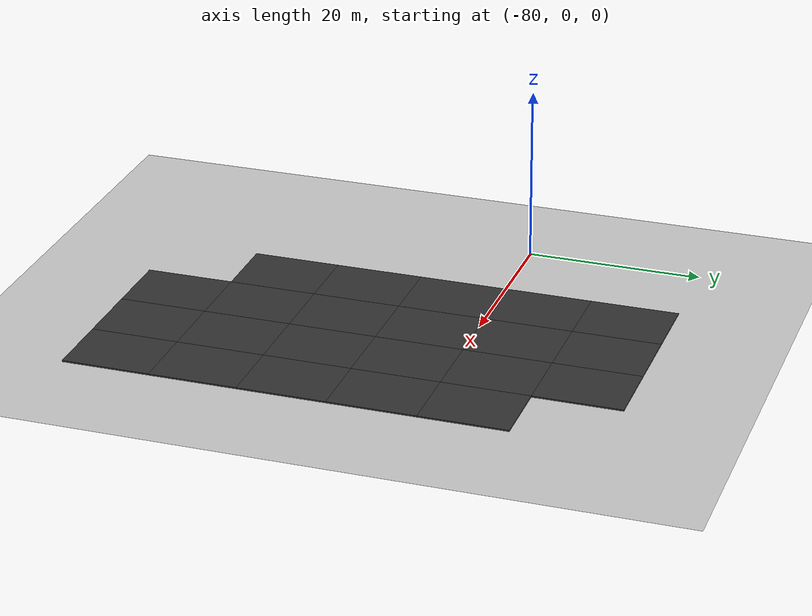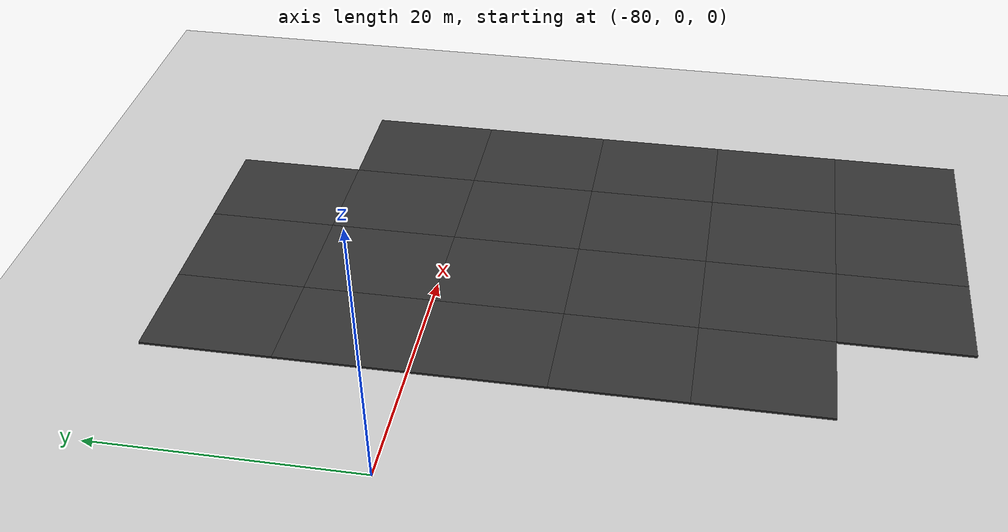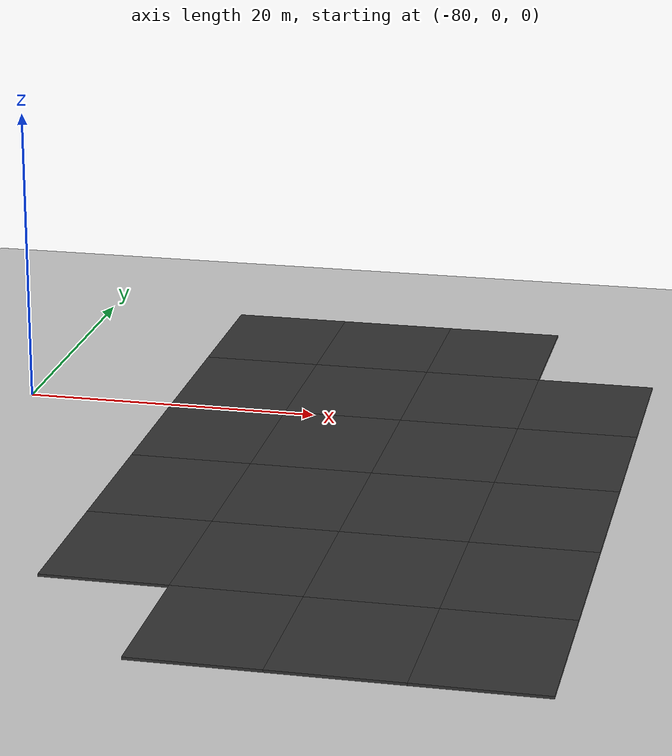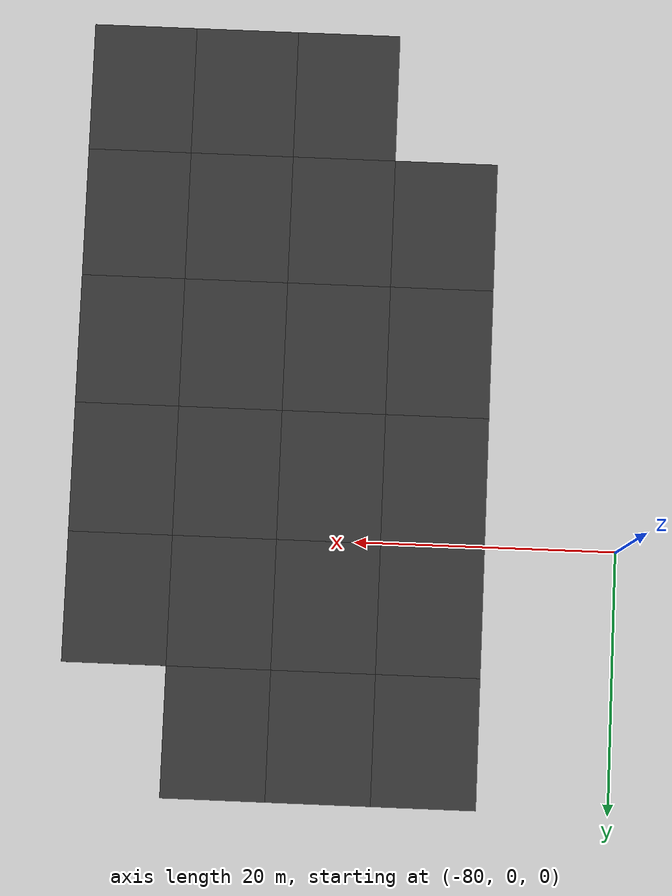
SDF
<sdf version="1.7">
 <world name="default">
  <model name="ground_plane">
   <static>1</static>
   <link name="link">
    <collision name="collision">
     <geometry><plane><normal>0 0 1</normal><size>100 100</size></plane></geometry>
     <surface>
      <contact><collide_bitmask>65535</collide_bitmask></contact>
      <friction><ode><mu>100</mu><mu2>50</mu2></ode></friction>
     </surface>
    </collision>
    <visual name="visual">
     <cast_shadows>0</cast_shadows>
     <geometry><plane><normal>0 0 1</normal><size>100 100</size></plane></geometry>
     <material>
      <script><uri>file://media/materials/scripts/gazebo.material</uri><name>Gazebo/Grey</name></script>
     </material>
    </visual>
   </link>
  </model>
  <model name="mud_box_54">
   <link name="link">
    <inertial>
     <mass>1</mass>
     <inertia><ixx>1</ixx><ixy>0</ixy><ixz>0</ixz><iyy>1</iyy><iyz>0</iyz><izz>1</izz></inertia>
    </inertial>
    <visual name="visual">
     <cast_shadows>0</cast_shadows>
     <geometry><box><size>8 10 0.2</size></box></geometry>
     <material>
      <script>
       <uri>model://mud_box/materials/scripts</uri>
       <uri>model://mud_box/materials/textures</uri>
       <name>vrc/mud</name>
      </script>
      <shader type="pixel"><normal_map>__default__</normal_map></shader>
      <ambient>0.2 0.2 0.2 1</ambient>
      <diffuse>0.2 0.2 0.2 1</diffuse>
      <specular>0.2 0.2 0.2 1</specular>
      <emissive>0 0 0 1</emissive>
     </material>
    </visual>
    <collision name="collision">
     <geometry><box><size>8 10 0.2</size></box></geometry>
     <surface>
      <friction>
       <ode><mu>1</mu><mu2>1</mu2><fdir1>0 0 0</fdir1><slip1>0</slip1><slip2>0</slip2></ode>
       <torsional>
        <coefficient>1</coefficient>
        <patch_radius>0</patch_radius>
        <surface_radius>0</surface_radius>
        <use_patch_radius>1</use_patch_radius>
        <ode><slip>0</slip></ode>
       </torsional>
      </friction>
      <bounce><restitution_coefficient>0</restitution_coefficient><threshold>1e+06</threshold></bounce>
      <contact>
       <collide_without_contact>0</collide_without_contact>
       <collide_without_contact_bitmask>1</collide_without_contact_bitmask>
       <collide_bitmask>1</collide_bitmask>
       <ode>
        <soft_cfm>0</soft_cfm>
        <soft_erp>0.2</soft_erp>
        <kp>1e+13</kp>
        <kd>1</kd>
        <max_vel>0.01</max_vel>
        <min_depth>0</min_depth>
       </ode>
       <bullet>
        <split_impulse>1</split_impulse>
        <split_impulse_penetration_threshold>-0.01</split_impulse_penetration_threshold>
        <soft_cfm>0</soft_cfm>
        <soft_erp>0.2</soft_erp>
        <kp>1e+13</kp>
        <kd>1</kd>
       </bullet>
      </contact>
     </surface>
    </collision>
   </link>
   <static>1</static>
   <pose>-42 -5 0 0 -0 0</pose>
  </model>
  <model name="mud_box_55">
   <link name="link">
    <inertial>
     <mass>1</mass>
     <inertia><ixx>1</ixx><ixy>0</ixy><ixz>0</ixz><iyy>1</iyy><iyz>0</iyz><izz>1</izz></inertia>
    </inertial>
    <visual name="visual">
     <cast_shadows>0</cast_shadows>
     <geometry><box><size>8 10 0.2</size></box></geometry>
     <material>
      <script>
       <uri>model://mud_box/materials/scripts</uri>
       <uri>model://mud_box/materials/textures</uri>
       <name>vrc/mud</name>
      </script>
      <shader type="pixel"><normal_map>__default__</normal_map></shader>
      <ambient>0.2 0.2 0.2 1</ambient>
      <diffuse>0.2 0.2 0.2 1</diffuse>
      <specular>0.2 0.2 0.2 1</specular>
      <emissive>0 0 0 1</emissive>
     </material>
    </visual>
    <collision name="collision">
     <geometry><box><size>8 10 0.2</size></box></geometry>
     <surface>
      <friction>
       <ode><mu>1</mu><mu2>1</mu2><fdir1>0 0 0</fdir1><slip1>0</slip1><slip2>0</slip2></ode>
       <torsional>
        <coefficient>1</coefficient>
        <patch_radius>0</patch_radius>
        <surface_radius>0</surface_radius>
        <use_patch_radius>1</use_patch_radius>
        <ode><slip>0</slip></ode>
       </torsional>
      </friction>
      <bounce><restitution_coefficient>0</restitution_coefficient><threshold>1e+06</threshold></bounce>
      <contact>
       <collide_without_contact>0</collide_without_contact>
       <collide_without_contact_bitmask>1</collide_without_contact_bitmask>
       <collide_bitmask>1</collide_bitmask>
       <ode>
        <soft_cfm>0</soft_cfm>
        <soft_erp>0.2</soft_erp>
        <kp>1e+13</kp>
        <kd>1</kd>
        <max_vel>0.01</max_vel>
        <min_depth>0</min_depth>
       </ode>
       <bullet>
        <split_impulse>1</split_impulse>
        <split_impulse_penetration_threshold>-0.01</split_impulse_penetration_threshold>
        <soft_cfm>0</soft_cfm>
        <soft_erp>0.2</soft_erp>
        <kp>1e+13</kp>
        <kd>1</kd>
       </bullet>
      </contact>
     </surface>
    </collision>
   </link>
   <static>1</static>
   <pose>-42 -15 0 0 -0 0</pose>
  </model>
  <model name="mud_box_56">
   <link name="link">
    <inertial>
     <mass>1</mass>
     <inertia><ixx>1</ixx><ixy>0</ixy><ixz>0</ixz><iyy>1</iyy><iyz>0</iyz><izz>1</izz></inertia>
    </inertial>
    <visual name="visual">
     <cast_shadows>0</cast_shadows>
     <geometry><box><size>8 10 0.2</size></box></geometry>
     <material>
      <script>
       <uri>model://mud_box/materials/scripts</uri>
       <uri>model://mud_box/materials/textures</uri>
       <name>vrc/mud</name>
      </script>
      <shader type="pixel"><normal_map>__default__</normal_map></shader>
      <ambient>0.2 0.2 0.2 1</ambient>
      <diffuse>0.2 0.2 0.2 1</diffuse>
      <specular>0.2 0.2 0.2 1</specular>
      <emissive>0 0 0 1</emissive>
     </material>
    </visual>
    <collision name="collision">
     <geometry><box><size>8 10 0.2</size></box></geometry>
     <surface>
      <friction>
       <ode><mu>1</mu><mu2>1</mu2><fdir1>0 0 0</fdir1><slip1>0</slip1><slip2>0</slip2></ode>
       <torsional>
        <coefficient>1</coefficient>
        <patch_radius>0</patch_radius>
        <surface_radius>0</surface_radius>
        <use_patch_radius>1</use_patch_radius>
        <ode><slip>0</slip></ode>
       </torsional>
      </friction>
      <bounce><restitution_coefficient>0</restitution_coefficient><threshold>1e+06</threshold></bounce>
      <contact>
       <collide_without_contact>0</collide_without_contact>
       <collide_without_contact_bitmask>1</collide_without_contact_bitmask>
       <collide_bitmask>1</collide_bitmask>
       <ode>
        <soft_cfm>0</soft_cfm>
        <soft_erp>0.2</soft_erp>
        <kp>1e+13</kp>
        <kd>1</kd>
        <max_vel>0.01</max_vel>
        <min_depth>0</min_depth>
       </ode>
       <bullet>
        <split_impulse>1</split_impulse>
        <split_impulse_penetration_threshold>-0.01</split_impulse_penetration_threshold>
        <soft_cfm>0</soft_cfm>
        <soft_erp>0.2</soft_erp>
        <kp>1e+13</kp>
        <kd>1</kd>
       </bullet>
      </contact>
     </surface>
    </collision>
   </link>
   <static>1</static>
   <pose>-42 -25 0 0 -0 0</pose>
  </model>
  <model name="mud_box_57">
   <link name="link">
    <inertial>
     <mass>1</mass>
     <inertia><ixx>1</ixx><ixy>0</ixy><ixz>0</ixz><iyy>1</iyy><iyz>0</iyz><izz>1</izz></inertia>
    </inertial>
    <visual name="visual">
     <cast_shadows>0</cast_shadows>
     <geometry><box><size>8 10 0.2</size></box></geometry>
     <material>
      <script>
       <uri>model://mud_box/materials/scripts</uri>
       <uri>model://mud_box/materials/textures</uri>
       <name>vrc/mud</name>
      </script>
      <shader type="pixel"><normal_map>__default__</normal_map></shader>
      <ambient>0.2 0.2 0.2 1</ambient>
      <diffuse>0.2 0.2 0.2 1</diffuse>
      <specular>0.2 0.2 0.2 1</specular>
      <emissive>0 0 0 1</emissive>
     </material>
    </visual>
    <collision name="collision">
     <geometry><box><size>8 10 0.2</size></box></geometry>
     <surface>
      <friction>
       <ode><mu>1</mu><mu2>1</mu2><fdir1>0 0 0</fdir1><slip1>0</slip1><slip2>0</slip2></ode>
       <torsional>
        <coefficient>1</coefficient>
        <patch_radius>0</patch_radius>
        <surface_radius>0</surface_radius>
        <use_patch_radius>1</use_patch_radius>
        <ode><slip>0</slip></ode>
       </torsional>
      </friction>
      <bounce><restitution_coefficient>0</restitution_coefficient><threshold>1e+06</threshold></bounce>
      <contact>
       <collide_without_contact>0</collide_without_contact>
       <collide_without_contact_bitmask>1</collide_without_contact_bitmask>
       <collide_bitmask>1</collide_bitmask>
       <ode>
        <soft_cfm>0</soft_cfm>
        <soft_erp>0.2</soft_erp>
        <kp>1e+13</kp>
        <kd>1</kd>
        <max_vel>0.01</max_vel>
        <min_depth>0</min_depth>
       </ode>
       <bullet>
        <split_impulse>1</split_impulse>
        <split_impulse_penetration_threshold>-0.01</split_impulse_penetration_threshold>
        <soft_cfm>0</soft_cfm>
        <soft_erp>0.2</soft_erp>
        <kp>1e+13</kp>
        <kd>1</kd>
       </bullet>
      </contact>
     </surface>
    </collision>
   </link>
   <static>1</static>
   <pose>-42 -35 0 0 -0 0</pose>
  </model>
  <model name="mud_box_60">
   <link name="link">
    <inertial>
     <mass>1</mass>
     <inertia><ixx>1</ixx><ixy>0</ixy><ixz>0</ixz><iyy>1</iyy><iyz>0</iyz><izz>1</izz></inertia>
    </inertial>
    <visual name="visual">
     <cast_shadows>0</cast_shadows>
     <geometry><box><size>8 10 0.2</size></box></geometry>
     <material>
      <script>
       <uri>model://mud_box/materials/scripts</uri>
       <uri>model://mud_box/materials/textures</uri>
       <name>vrc/mud</name>
      </script>
      <shader type="pixel"><normal_map>__default__</normal_map></shader>
      <ambient>0.2 0.2 0.2 1</ambient>
      <diffuse>0.2 0.2 0.2 1</diffuse>
      <specular>0.2 0.2 0.2 1</specular>
      <emissive>0 0 0 1</emissive>
     </material>
    </visual>
    <collision name="collision">
     <geometry><box><size>8 10 0.2</size></box></geometry>
     <surface>
      <friction>
       <ode><mu>1</mu><mu2>1</mu2><fdir1>0 0 0</fdir1><slip1>0</slip1><slip2>0</slip2></ode>
       <torsional>
        <coefficient>1</coefficient>
        <patch_radius>0</patch_radius>
        <surface_radius>0</surface_radius>
        <use_patch_radius>1</use_patch_radius>
        <ode><slip>0</slip></ode>
       </torsional>
      </friction>
      <bounce><restitution_coefficient>0</restitution_coefficient><threshold>1e+06</threshold></bounce>
      <contact>
       <collide_without_contact>0</collide_without_contact>
       <collide_without_contact_bitmask>1</collide_without_contact_bitmask>
       <collide_bitmask>1</collide_bitmask>
       <ode>
        <soft_cfm>0</soft_cfm>
        <soft_erp>0.2</soft_erp>
        <kp>1e+13</kp>
        <kd>1</kd>
        <max_vel>0.01</max_vel>
        <min_depth>0</min_depth>
       </ode>
       <bullet>
        <split_impulse>1</split_impulse>
        <split_impulse_penetration_threshold>-0.01</split_impulse_penetration_threshold>
        <soft_cfm>0</soft_cfm>
        <soft_erp>0.2</soft_erp>
        <kp>1e+13</kp>
        <kd>1</kd>
       </bullet>
      </contact>
     </surface>
    </collision>
   </link>
   <static>1</static>
   <pose>-50 -35 0 0 -0 0</pose>
  </model>
  <model name="mud_box_61">
   <link name="link">
    <inertial>
     <mass>1</mass>
     <inertia><ixx>1</ixx><ixy>0</ixy><ixz>0</ixz><iyy>1</iyy><iyz>0</iyz><izz>1</izz></inertia>
    </inertial>
    <visual name="visual">
     <cast_shadows>0</cast_shadows>
     <geometry><box><size>8 10 0.2</size></box></geometry>
     <material>
      <script>
       <uri>model://mud_box/materials/scripts</uri>
       <uri>model://mud_box/materials/textures</uri>
       <name>vrc/mud</name>
      </script>
      <shader type="pixel"><normal_map>__default__</normal_map></shader>
      <ambient>0.2 0.2 0.2 1</ambient>
      <diffuse>0.2 0.2 0.2 1</diffuse>
      <specular>0.2 0.2 0.2 1</specular>
      <emissive>0 0 0 1</emissive>
     </material>
    </visual>
    <collision name="collision">
     <geometry><box><size>8 10 0.2</size></box></geometry>
     <surface>
      <friction>
       <ode><mu>1</mu><mu2>1</mu2><fdir1>0 0 0</fdir1><slip1>0</slip1><slip2>0</slip2></ode>
       <torsional>
        <coefficient>1</coefficient>
        <patch_radius>0</patch_radius>
        <surface_radius>0</surface_radius>
        <use_patch_radius>1</use_patch_radius>
        <ode><slip>0</slip></ode>
       </torsional>
      </friction>
      <bounce><restitution_coefficient>0</restitution_coefficient><threshold>1e+06</threshold></bounce>
      <contact>
       <collide_without_contact>0</collide_without_contact>
       <collide_without_contact_bitmask>1</collide_without_contact_bitmask>
       <collide_bitmask>1</collide_bitmask>
       <ode>
        <soft_cfm>0</soft_cfm>
        <soft_erp>0.2</soft_erp>
        <kp>1e+13</kp>
        <kd>1</kd>
        <max_vel>0.01</max_vel>
        <min_depth>0</min_depth>
       </ode>
       <bullet>
        <split_impulse>1</split_impulse>
        <split_impulse_penetration_threshold>-0.01</split_impulse_penetration_threshold>
        <soft_cfm>0</soft_cfm>
        <soft_erp>0.2</soft_erp>
        <kp>1e+13</kp>
        <kd>1</kd>
       </bullet>
      </contact>
     </surface>
    </collision>
   </link>
   <static>1</static>
   <pose>-50 -25 0 0 -0 0</pose>
  </model>
  <model name="mud_box_62">
   <link name="link">
    <inertial>
     <mass>1</mass>
     <inertia><ixx>1</ixx><ixy>0</ixy><ixz>0</ixz><iyy>1</iyy><iyz>0</iyz><izz>1</izz></inertia>
    </inertial>
    <visual name="visual">
     <cast_shadows>0</cast_shadows>
     <geometry><box><size>8 10 0.2</size></box></geometry>
     <material>
      <script>
       <uri>model://mud_box/materials/scripts</uri>
       <uri>model://mud_box/materials/textures</uri>
       <name>vrc/mud</name>
      </script>
      <shader type="pixel"><normal_map>__default__</normal_map></shader>
      <ambient>0.2 0.2 0.2 1</ambient>
      <diffuse>0.2 0.2 0.2 1</diffuse>
      <specular>0.2 0.2 0.2 1</specular>
      <emissive>0 0 0 1</emissive>
     </material>
    </visual>
    <collision name="collision">
     <geometry><box><size>8 10 0.2</size></box></geometry>
     <surface>
      <friction>
       <ode><mu>1</mu><mu2>1</mu2><fdir1>0 0 0</fdir1><slip1>0</slip1><slip2>0</slip2></ode>
       <torsional>
        <coefficient>1</coefficient>
        <patch_radius>0</patch_radius>
        <surface_radius>0</surface_radius>
        <use_patch_radius>1</use_patch_radius>
        <ode><slip>0</slip></ode>
       </torsional>
      </friction>
      <bounce><restitution_coefficient>0</restitution_coefficient><threshold>1e+06</threshold></bounce>
      <contact>
       <collide_without_contact>0</collide_without_contact>
       <collide_without_contact_bitmask>1</collide_without_contact_bitmask>
       <collide_bitmask>1</collide_bitmask>
       <ode>
        <soft_cfm>0</soft_cfm>
        <soft_erp>0.2</soft_erp>
        <kp>1e+13</kp>
        <kd>1</kd>
        <max_vel>0.01</max_vel>
        <min_depth>0</min_depth>
       </ode>
       <bullet>
        <split_impulse>1</split_impulse>
        <split_impulse_penetration_threshold>-0.01</split_impulse_penetration_threshold>
        <soft_cfm>0</soft_cfm>
        <soft_erp>0.2</soft_erp>
        <kp>1e+13</kp>
        <kd>1</kd>
       </bullet>
      </contact>
     </surface>
    </collision>
   </link>
   <static>1</static>
   <pose>-50 -15 0 0 -0 0</pose>
  </model>
  <model name="mud_box_63">
   <link name="link">
    <inertial>
     <mass>1</mass>
     <inertia><ixx>1</ixx><ixy>0</ixy><ixz>0</ixz><iyy>1</iyy><iyz>0</iyz><izz>1</izz></inertia>
    </inertial>
    <visual name="visual">
     <cast_shadows>0</cast_shadows>
     <geometry><box><size>8 10 0.2</size></box></geometry>
     <material>
      <script>
       <uri>model://mud_box/materials/scripts</uri>
       <uri>model://mud_box/materials/textures</uri>
       <name>vrc/mud</name>
      </script>
      <shader type="pixel"><normal_map>__default__</normal_map></shader>
      <ambient>0.2 0.2 0.2 1</ambient>
      <diffuse>0.2 0.2 0.2 1</diffuse>
      <specular>0.2 0.2 0.2 1</specular>
      <emissive>0 0 0 1</emissive>
     </material>
    </visual>
    <collision name="collision">
     <geometry><box><size>8 10 0.2</size></box></geometry>
     <surface>
      <friction>
       <ode><mu>1</mu><mu2>1</mu2><fdir1>0 0 0</fdir1><slip1>0</slip1><slip2>0</slip2></ode>
       <torsional>
        <coefficient>1</coefficient>
        <patch_radius>0</patch_radius>
        <surface_radius>0</surface_radius>
        <use_patch_radius>1</use_patch_radius>
        <ode><slip>0</slip></ode>
       </torsional>
      </friction>
      <bounce><restitution_coefficient>0</restitution_coefficient><threshold>1e+06</threshold></bounce>
      <contact>
       <collide_without_contact>0</collide_without_contact>
       <collide_without_contact_bitmask>1</collide_without_contact_bitmask>
       <collide_bitmask>1</collide_bitmask>
       <ode>
        <soft_cfm>0</soft_cfm>
        <soft_erp>0.2</soft_erp>
        <kp>1e+13</kp>
        <kd>1</kd>
        <max_vel>0.01</max_vel>
        <min_depth>0</min_depth>
       </ode>
       <bullet>
        <split_impulse>1</split_impulse>
        <split_impulse_penetration_threshold>-0.01</split_impulse_penetration_threshold>
        <soft_cfm>0</soft_cfm>
        <soft_erp>0.2</soft_erp>
        <kp>1e+13</kp>
        <kd>1</kd>
       </bullet>
      </contact>
     </surface>
    </collision>
   </link>
   <static>1</static>
   <pose>-50 -5 0 0 -0 0</pose>
  </model>
  <model name="mud_box_79">
   <link name="link">
    <inertial>
     <mass>1</mass>
     <inertia><ixx>1</ixx><ixy>0</ixy><ixz>0</ixz><iyy>1</iyy><iyz>0</iyz><izz>1</izz></inertia>
    </inertial>
    <visual name="visual">
     <cast_shadows>0</cast_shadows>
     <geometry><box><size>8 10 0.2</size></box></geometry>
     <material>
      <script>
       <uri>model://mud_box/materials/scripts</uri>
       <uri>model://mud_box/materials/textures</uri>
       <name>vrc/mud</name>
      </script>
      <shader type="pixel"><normal_map>__default__</normal_map></shader>
      <ambient>0.2 0.2 0.2 1</ambient>
      <diffuse>0.2 0.2 0.2 1</diffuse>
      <specular>0.2 0.2 0.2 1</specular>
      <emissive>0 0 0 1</emissive>
     </material>
    </visual>
    <collision name="collision">
     <geometry><box><size>8 10 0.2</size></box></geometry>
     <surface>
      <friction>
       <ode><mu>1</mu><mu2>1</mu2><fdir1>0 0 0</fdir1><slip1>0</slip1><slip2>0</slip2></ode>
       <torsional>
        <coefficient>1</coefficient>
        <patch_radius>0</patch_radius>
        <surface_radius>0</surface_radius>
        <use_patch_radius>1</use_patch_radius>
        <ode><slip>0</slip></ode>
       </torsional>
      </friction>
      <bounce><restitution_coefficient>0</restitution_coefficient><threshold>1e+06</threshold></bounce>
      <contact>
       <collide_without_contact>0</collide_without_contact>
       <collide_without_contact_bitmask>1</collide_without_contact_bitmask>
       <collide_bitmask>1</collide_bitmask>
       <ode>
        <soft_cfm>0</soft_cfm>
        <soft_erp>0.2</soft_erp>
        <kp>1e+13</kp>
        <kd>1</kd>
        <max_vel>0.01</max_vel>
        <min_depth>0</min_depth>
       </ode>
       <bullet>
        <split_impulse>1</split_impulse>
        <split_impulse_penetration_threshold>-0.01</split_impulse_penetration_threshold>
        <soft_cfm>0</soft_cfm>
        <soft_erp>0.2</soft_erp>
        <kp>1e+13</kp>
        <kd>1</kd>
       </bullet>
      </contact>
     </surface>
    </collision>
   </link>
   <static>1</static>
   <pose>-58 -35 0 0 -0 0</pose>
  </model>
  <model name="mud_box_80">
   <link name="link">
    <inertial>
     <mass>1</mass>
     <inertia><ixx>1</ixx><ixy>0</ixy><ixz>0</ixz><iyy>1</iyy><iyz>0</iyz><izz>1</izz></inertia>
    </inertial>
    <visual name="visual">
     <cast_shadows>0</cast_shadows>
     <geometry><box><size>8 10 0.2</size></box></geometry>
     <material>
      <script>
       <uri>model://mud_box/materials/scripts</uri>
       <uri>model://mud_box/materials/textures</uri>
       <name>vrc/mud</name>
      </script>
      <shader type="pixel"><normal_map>__default__</normal_map></shader>
      <ambient>0.2 0.2 0.2 1</ambient>
      <diffuse>0.2 0.2 0.2 1</diffuse>
      <specular>0.2 0.2 0.2 1</specular>
      <emissive>0 0 0 1</emissive>
     </material>
    </visual>
    <collision name="collision">
     <geometry><box><size>8 10 0.2</size></box></geometry>
     <surface>
      <friction>
       <ode><mu>1</mu><mu2>1</mu2><fdir1>0 0 0</fdir1><slip1>0</slip1><slip2>0</slip2></ode>
       <torsional>
        <coefficient>1</coefficient>
        <patch_radius>0</patch_radius>
        <surface_radius>0</surface_radius>
        <use_patch_radius>1</use_patch_radius>
        <ode><slip>0</slip></ode>
       </torsional>
      </friction>
      <bounce><restitution_coefficient>0</restitution_coefficient><threshold>1e+06</threshold></bounce>
      <contact>
       <collide_without_contact>0</collide_without_contact>
       <collide_without_contact_bitmask>1</collide_without_contact_bitmask>
       <collide_bitmask>1</collide_bitmask>
       <ode>
        <soft_cfm>0</soft_cfm>
        <soft_erp>0.2</soft_erp>
        <kp>1e+13</kp>
        <kd>1</kd>
        <max_vel>0.01</max_vel>
        <min_depth>0</min_depth>
       </ode>
       <bullet>
        <split_impulse>1</split_impulse>
        <split_impulse_penetration_threshold>-0.01</split_impulse_penetration_threshold>
        <soft_cfm>0</soft_cfm>
        <soft_erp>0.2</soft_erp>
        <kp>1e+13</kp>
        <kd>1</kd>
       </bullet>
      </contact>
     </surface>
    </collision>
   </link>
   <static>1</static>
   <pose>-58 -25 0 0 -0 0</pose>
  </model>
  <model name="mud_box_81">
   <link name="link">
    <inertial>
     <mass>1</mass>
     <inertia><ixx>1</ixx><ixy>0</ixy><ixz>0</ixz><iyy>1</iyy><iyz>0</iyz><izz>1</izz></inertia>
    </inertial>
    <visual name="visual">
     <cast_shadows>0</cast_shadows>
     <geometry><box><size>8 10 0.2</size></box></geometry>
     <material>
      <script>
       <uri>model://mud_box/materials/scripts</uri>
       <uri>model://mud_box/materials/textures</uri>
       <name>vrc/mud</name>
      </script>
      <shader type="pixel"><normal_map>__default__</normal_map></shader>
      <ambient>0.2 0.2 0.2 1</ambient>
      <diffuse>0.2 0.2 0.2 1</diffuse>
      <specular>0.2 0.2 0.2 1</specular>
      <emissive>0 0 0 1</emissive>
     </material>
    </visual>
    <collision name="collision">
     <geometry><box><size>8 10 0.2</size></box></geometry>
     <surface>
      <friction>
       <ode><mu>1</mu><mu2>1</mu2><fdir1>0 0 0</fdir1><slip1>0</slip1><slip2>0</slip2></ode>
       <torsional>
        <coefficient>1</coefficient>
        <patch_radius>0</patch_radius>
        <surface_radius>0</surface_radius>
        <use_patch_radius>1</use_patch_radius>
        <ode><slip>0</slip></ode>
       </torsional>
      </friction>
      <bounce><restitution_coefficient>0</restitution_coefficient><threshold>1e+06</threshold></bounce>
      <contact>
       <collide_without_contact>0</collide_without_contact>
       <collide_without_contact_bitmask>1</collide_without_contact_bitmask>
       <collide_bitmask>1</collide_bitmask>
       <ode>
        <soft_cfm>0</soft_cfm>
        <soft_erp>0.2</soft_erp>
        <kp>1e+13</kp>
        <kd>1</kd>
        <max_vel>0.01</max_vel>
        <min_depth>0</min_depth>
       </ode>
       <bullet>
        <split_impulse>1</split_impulse>
        <split_impulse_penetration_threshold>-0.01</split_impulse_penetration_threshold>
        <soft_cfm>0</soft_cfm>
        <soft_erp>0.2</soft_erp>
        <kp>1e+13</kp>
        <kd>1</kd>
       </bullet>
      </contact>
     </surface>
    </collision>
   </link>
   <static>1</static>
   <pose>-58 -15 0 0 -0 0</pose>
  </model>
  <model name="mud_box_82">
   <link name="link">
    <inertial>
     <mass>1</mass>
     <inertia><ixx>1</ixx><ixy>0</ixy><ixz>0</ixz><iyy>1</iyy><iyz>0</iyz><izz>1</izz></inertia>
    </inertial>
    <visual name="visual">
     <cast_shadows>0</cast_shadows>
     <geometry><box><size>8 10 0.2</size></box></geometry>
     <material>
      <script>
       <uri>model://mud_box/materials/scripts</uri>
       <uri>model://mud_box/materials/textures</uri>
       <name>vrc/mud</name>
      </script>
      <shader type="pixel"><normal_map>__default__</normal_map></shader>
      <ambient>0.2 0.2 0.2 1</ambient>
      <diffuse>0.2 0.2 0.2 1</diffuse>
      <specular>0.2 0.2 0.2 1</specular>
      <emissive>0 0 0 1</emissive>
     </material>
    </visual>
    <collision name="collision">
     <geometry><box><size>8 10 0.2</size></box></geometry>
     <surface>
      <friction>
       <ode><mu>1</mu><mu2>1</mu2><fdir1>0 0 0</fdir1><slip1>0</slip1><slip2>0</slip2></ode>
       <torsional>
        <coefficient>1</coefficient>
        <patch_radius>0</patch_radius>
        <surface_radius>0</surface_radius>
        <use_patch_radius>1</use_patch_radius>
        <ode><slip>0</slip></ode>
       </torsional>
      </friction>
      <bounce><restitution_coefficient>0</restitution_coefficient><threshold>1e+06</threshold></bounce>
      <contact>
       <collide_without_contact>0</collide_without_contact>
       <collide_without_contact_bitmask>1</collide_without_contact_bitmask>
       <collide_bitmask>1</collide_bitmask>
       <ode>
        <soft_cfm>0</soft_cfm>
        <soft_erp>0.2</soft_erp>
        <kp>1e+13</kp>
        <kd>1</kd>
        <max_vel>0.01</max_vel>
        <min_depth>0</min_depth>
       </ode>
       <bullet>
        <split_impulse>1</split_impulse>
        <split_impulse_penetration_threshold>-0.01</split_impulse_penetration_threshold>
        <soft_cfm>0</soft_cfm>
        <soft_erp>0.2</soft_erp>
        <kp>1e+13</kp>
        <kd>1</kd>
       </bullet>
      </contact>
     </surface>
    </collision>
   </link>
   <static>1</static>
   <pose>-58 -5 0 0 -0 0</pose>
  </model>
  <model name="mud_box_83">
   <link name="link">
    <inertial>
     <mass>1</mass>
     <inertia><ixx>1</ixx><ixy>0</ixy><ixz>0</ixz><iyy>1</iyy><iyz>0</iyz><izz>1</izz></inertia>
    </inertial>
    <visual name="visual">
     <cast_shadows>0</cast_shadows>
     <geometry><box><size>8 10 0.2</size></box></geometry>
     <material>
      <script>
       <uri>model://mud_box/materials/scripts</uri>
       <uri>model://mud_box/materials/textures</uri>
       <name>vrc/mud</name>
      </script>
      <shader type="pixel"><normal_map>__default__</normal_map></shader>
      <ambient>0.2 0.2 0.2 1</ambient>
      <diffuse>0.2 0.2 0.2 1</diffuse>
      <specular>0.2 0.2 0.2 1</specular>
      <emissive>0 0 0 1</emissive>
     </material>
    </visual>
    <collision name="collision">
     <geometry><box><size>8 10 0.2</size></box></geometry>
     <surface>
      <friction>
       <ode><mu>1</mu><mu2>1</mu2><fdir1>0 0 0</fdir1><slip1>0</slip1><slip2>0</slip2></ode>
       <torsional>
        <coefficient>1</coefficient>
        <patch_radius>0</patch_radius>
        <surface_radius>0</surface_radius>
        <use_patch_radius>1</use_patch_radius>
        <ode><slip>0</slip></ode>
       </torsional>
      </friction>
      <bounce><restitution_coefficient>0</restitution_coefficient><threshold>1e+06</threshold></bounce>
      <contact>
       <collide_without_contact>0</collide_without_contact>
       <collide_without_contact_bitmask>1</collide_without_contact_bitmask>
       <collide_bitmask>1</collide_bitmask>
       <ode>
        <soft_cfm>0</soft_cfm>
        <soft_erp>0.2</soft_erp>
        <kp>1e+13</kp>
        <kd>1</kd>
        <max_vel>0.01</max_vel>
        <min_depth>0</min_depth>
       </ode>
       <bullet>
        <split_impulse>1</split_impulse>
        <split_impulse_penetration_threshold>-0.01</split_impulse_penetration_threshold>
        <soft_cfm>0</soft_cfm>
        <soft_erp>0.2</soft_erp>
        <kp>1e+13</kp>
        <kd>1</kd>
       </bullet>
      </contact>
     </surface>
    </collision>
   </link>
   <static>1</static>
   <pose>-58 5 0 0 -0 0</pose>
  </model>
  <model name="mud_box_84">
   <link name="link">
    <inertial>
     <mass>1</mass>
     <inertia><ixx>1</ixx><ixy>0</ixy><ixz>0</ixz><iyy>1</iyy><iyz>0</iyz><izz>1</izz></inertia>
    </inertial>
    <visual name="visual">
     <cast_shadows>0</cast_shadows>
     <geometry><box><size>8 10 0.2</size></box></geometry>
     <material>
      <script>
       <uri>model://mud_box/materials/scripts</uri>
       <uri>model://mud_box/materials/textures</uri>
       <name>vrc/mud</name>
      </script>
      <shader type="pixel"><normal_map>__default__</normal_map></shader>
      <ambient>0.2 0.2 0.2 1</ambient>
      <diffuse>0.2 0.2 0.2 1</diffuse>
      <specular>0.2 0.2 0.2 1</specular>
      <emissive>0 0 0 1</emissive>
     </material>
    </visual>
    <collision name="collision">
     <geometry><box><size>8 10 0.2</size></box></geometry>
     <surface>
      <friction>
       <ode><mu>1</mu><mu2>1</mu2><fdir1>0 0 0</fdir1><slip1>0</slip1><slip2>0</slip2></ode>
       <torsional>
        <coefficient>1</coefficient>
        <patch_radius>0</patch_radius>
        <surface_radius>0</surface_radius>
        <use_patch_radius>1</use_patch_radius>
        <ode><slip>0</slip></ode>
       </torsional>
      </friction>
      <bounce><restitution_coefficient>0</restitution_coefficient><threshold>1e+06</threshold></bounce>
      <contact>
       <collide_without_contact>0</collide_without_contact>
       <collide_without_contact_bitmask>1</collide_without_contact_bitmask>
       <collide_bitmask>1</collide_bitmask>
       <ode>
        <soft_cfm>0</soft_cfm>
        <soft_erp>0.2</soft_erp>
        <kp>1e+13</kp>
        <kd>1</kd>
        <max_vel>0.01</max_vel>
        <min_depth>0</min_depth>
       </ode>
       <bullet>
        <split_impulse>1</split_impulse>
        <split_impulse_penetration_threshold>-0.01</split_impulse_penetration_threshold>
        <soft_cfm>0</soft_cfm>
        <soft_erp>0.2</soft_erp>
        <kp>1e+13</kp>
        <kd>1</kd>
       </bullet>
      </contact>
     </surface>
    </collision>
   </link>
   <static>1</static>
   <pose>-50 5 0 0 -0 0</pose>
  </model>
  <model name="mud_box_85">
   <link name="link">
    <inertial>
     <mass>1</mass>
     <inertia><ixx>1</ixx><ixy>0</ixy><ixz>0</ixz><iyy>1</iyy><iyz>0</iyz><izz>1</izz></inertia>
    </inertial>
    <visual name="visual">
     <cast_shadows>0</cast_shadows>
     <geometry><box><size>8 10 0.2</size></box></geometry>
     <material>
      <script>
       <uri>model://mud_box/materials/scripts</uri>
       <uri>model://mud_box/materials/textures</uri>
       <name>vrc/mud</name>
      </script>
      <shader type="pixel"><normal_map>__default__</normal_map></shader>
      <ambient>0.2 0.2 0.2 1</ambient>
      <diffuse>0.2 0.2 0.2 1</diffuse>
      <specular>0.2 0.2 0.2 1</specular>
      <emissive>0 0 0 1</emissive>
     </material>
    </visual>
    <collision name="collision">
     <geometry><box><size>8 10 0.2</size></box></geometry>
     <surface>
      <friction>
       <ode><mu>1</mu><mu2>1</mu2><fdir1>0 0 0</fdir1><slip1>0</slip1><slip2>0</slip2></ode>
       <torsional>
        <coefficient>1</coefficient>
        <patch_radius>0</patch_radius>
        <surface_radius>0</surface_radius>
        <use_patch_radius>1</use_patch_radius>
        <ode><slip>0</slip></ode>
       </torsional>
      </friction>
      <bounce><restitution_coefficient>0</restitution_coefficient><threshold>1e+06</threshold></bounce>
      <contact>
       <collide_without_contact>0</collide_without_contact>
       <collide_without_contact_bitmask>1</collide_without_contact_bitmask>
       <collide_bitmask>1</collide_bitmask>
       <ode>
        <soft_cfm>0</soft_cfm>
        <soft_erp>0.2</soft_erp>
        <kp>1e+13</kp>
        <kd>1</kd>
        <max_vel>0.01</max_vel>
        <min_depth>0</min_depth>
       </ode>
       <bullet>
        <split_impulse>1</split_impulse>
        <split_impulse_penetration_threshold>-0.01</split_impulse_penetration_threshold>
        <soft_cfm>0</soft_cfm>
        <soft_erp>0.2</soft_erp>
        <kp>1e+13</kp>
        <kd>1</kd>
       </bullet>
      </contact>
     </surface>
    </collision>
   </link>
   <static>1</static>
   <pose>-42 5 0 0 -0 0</pose>
  </model>
  <model name="mud_box_131">
   <link name="link">
    <inertial>
     <mass>1</mass>
     <inertia><ixx>1</ixx><ixy>0</ixy><ixz>0</ixz><iyy>1</iyy><iyz>0</iyz><izz>1</izz></inertia>
    </inertial>
    <visual name="visual">
     <cast_shadows>0</cast_shadows>
     <geometry><box><size>8 10 0.2</size></box></geometry>
     <material>
      <script>
       <uri>model://mud_box/materials/scripts</uri>
       <uri>model://mud_box/materials/textures</uri>
       <name>vrc/mud</name>
      </script>
      <shader type="pixel"><normal_map>__default__</normal_map></shader>
      <ambient>0.2 0.2 0.2 1</ambient>
      <diffuse>0.2 0.2 0.2 1</diffuse>
      <specular>0.2 0.2 0.2 1</specular>
      <emissive>0 0 0 1</emissive>
     </material>
    </visual>
    <collision name="collision">
     <geometry><box><size>8 10 0.2</size></box></geometry>
     <surface>
      <friction>
       <ode><mu>1</mu><mu2>1</mu2><fdir1>0 0 0</fdir1><slip1>0</slip1><slip2>0</slip2></ode>
       <torsional>
        <coefficient>1</coefficient>
        <patch_radius>0</patch_radius>
        <surface_radius>0</surface_radius>
        <use_patch_radius>1</use_patch_radius>
        <ode><slip>0</slip></ode>
       </torsional>
      </friction>
      <bounce><restitution_coefficient>0</restitution_coefficient><threshold>1e+06</threshold></bounce>
      <contact>
       <collide_without_contact>0</collide_without_contact>
       <collide_without_contact_bitmask>1</collide_without_contact_bitmask>
       <collide_bitmask>1</collide_bitmask>
       <ode>
        <soft_cfm>0</soft_cfm>
        <soft_erp>0.2</soft_erp>
        <kp>1e+13</kp>
        <kd>1</kd>
        <max_vel>0.01</max_vel>
        <min_depth>0</min_depth>
       </ode>
       <bullet>
        <split_impulse>1</split_impulse>
        <split_impulse_penetration_threshold>-0.01</split_impulse_penetration_threshold>
        <soft_cfm>0</soft_cfm>
        <soft_erp>0.2</soft_erp>
        <kp>1e+13</kp>
        <kd>1</kd>
       </bullet>
      </contact>
     </surface>
    </collision>
   </link>
   <static>1</static>
   <pose>-66 -25 0 0 -0 0</pose>
  </model>
  <model name="mud_box_132">
   <link name="link">
    <inertial>
     <mass>1</mass>
     <inertia><ixx>1</ixx><ixy>0</ixy><ixz>0</ixz><iyy>1</iyy><iyz>0</iyz><izz>1</izz></inertia>
    </inertial>
    <visual name="visual">
     <cast_shadows>0</cast_shadows>
     <geometry><box><size>8 10 0.2</size></box></geometry>
     <material>
      <script>
       <uri>model://mud_box/materials/scripts</uri>
       <uri>model://mud_box/materials/textures</uri>
       <name>vrc/mud</name>
      </script>
      <shader type="pixel"><normal_map>__default__</normal_map></shader>
      <ambient>0.2 0.2 0.2 1</ambient>
      <diffuse>0.2 0.2 0.2 1</diffuse>
      <specular>0.2 0.2 0.2 1</specular>
      <emissive>0 0 0 1</emissive>
     </material>
    </visual>
    <collision name="collision">
     <geometry><box><size>8 10 0.2</size></box></geometry>
     <surface>
      <friction>
       <ode><mu>1</mu><mu2>1</mu2><fdir1>0 0 0</fdir1><slip1>0</slip1><slip2>0</slip2></ode>
       <torsional>
        <coefficient>1</coefficient>
        <patch_radius>0</patch_radius>
        <surface_radius>0</surface_radius>
        <use_patch_radius>1</use_patch_radius>
        <ode><slip>0</slip></ode>
       </torsional>
      </friction>
      <bounce><restitution_coefficient>0</restitution_coefficient><threshold>1e+06</threshold></bounce>
      <contact>
       <collide_without_contact>0</collide_without_contact>
       <collide_without_contact_bitmask>1</collide_without_contact_bitmask>
       <collide_bitmask>1</collide_bitmask>
       <ode>
        <soft_cfm>0</soft_cfm>
        <soft_erp>0.2</soft_erp>
        <kp>1e+13</kp>
        <kd>1</kd>
        <max_vel>0.01</max_vel>
        <min_depth>0</min_depth>
       </ode>
       <bullet>
        <split_impulse>1</split_impulse>
        <split_impulse_penetration_threshold>-0.01</split_impulse_penetration_threshold>
        <soft_cfm>0</soft_cfm>
        <soft_erp>0.2</soft_erp>
        <kp>1e+13</kp>
        <kd>1</kd>
       </bullet>
      </contact>
     </surface>
    </collision>
   </link>
   <static>1</static>
   <pose>-66 -15 0 0 -0 0</pose>
  </model>
  <model name="mud_box_133">
   <link name="link">
    <inertial>
     <mass>1</mass>
     <inertia><ixx>1</ixx><ixy>0</ixy><ixz>0</ixz><iyy>1</iyy><iyz>0</iyz><izz>1</izz></inertia>
    </inertial>
    <visual name="visual">
     <cast_shadows>0</cast_shadows>
     <geometry><box><size>8 10 0.2</size></box></geometry>
     <material>
      <script>
       <uri>model://mud_box/materials/scripts</uri>
       <uri>model://mud_box/materials/textures</uri>
       <name>vrc/mud</name>
      </script>
      <shader type="pixel"><normal_map>__default__</normal_map></shader>
      <ambient>0.2 0.2 0.2 1</ambient>
      <diffuse>0.2 0.2 0.2 1</diffuse>
      <specular>0.2 0.2 0.2 1</specular>
      <emissive>0 0 0 1</emissive>
     </material>
    </visual>
    <collision name="collision">
     <geometry><box><size>8 10 0.2</size></box></geometry>
     <surface>
      <friction>
       <ode><mu>1</mu><mu2>1</mu2><fdir1>0 0 0</fdir1><slip1>0</slip1><slip2>0</slip2></ode>
       <torsional>
        <coefficient>1</coefficient>
        <patch_radius>0</patch_radius>
        <surface_radius>0</surface_radius>
        <use_patch_radius>1</use_patch_radius>
        <ode><slip>0</slip></ode>
       </torsional>
      </friction>
      <bounce><restitution_coefficient>0</restitution_coefficient><threshold>1e+06</threshold></bounce>
      <contact>
       <collide_without_contact>0</collide_without_contact>
       <collide_without_contact_bitmask>1</collide_without_contact_bitmask>
       <collide_bitmask>1</collide_bitmask>
       <ode>
        <soft_cfm>0</soft_cfm>
        <soft_erp>0.2</soft_erp>
        <kp>1e+13</kp>
        <kd>1</kd>
        <max_vel>0.01</max_vel>
        <min_depth>0</min_depth>
       </ode>
       <bullet>
        <split_impulse>1</split_impulse>
        <split_impulse_penetration_threshold>-0.01</split_impulse_penetration_threshold>
        <soft_cfm>0</soft_cfm>
        <soft_erp>0.2</soft_erp>
        <kp>1e+13</kp>
        <kd>1</kd>
       </bullet>
      </contact>
     </surface>
    </collision>
   </link>
   <static>1</static>
   <pose>-66 -5 0 0 -0 0</pose>
  </model>
  <model name="mud_box_134">
   <link name="link">
    <inertial>
     <mass>1</mass>
     <inertia><ixx>1</ixx><ixy>0</ixy><ixz>0</ixz><iyy>1</iyy><iyz>0</iyz><izz>1</izz></inertia>
    </inertial>
    <visual name="visual">
     <cast_shadows>0</cast_shadows>
     <geometry><box><size>8 10 0.2</size></box></geometry>
     <material>
      <script>
       <uri>model://mud_box/materials/scripts</uri>
       <uri>model://mud_box/materials/textures</uri>
       <name>vrc/mud</name>
      </script>
      <shader type="pixel"><normal_map>__default__</normal_map></shader>
      <ambient>0.2 0.2 0.2 1</ambient>
      <diffuse>0.2 0.2 0.2 1</diffuse>
      <specular>0.2 0.2 0.2 1</specular>
      <emissive>0 0 0 1</emissive>
     </material>
    </visual>
    <collision name="collision">
     <geometry><box><size>8 10 0.2</size></box></geometry>
     <surface>
      <friction>
       <ode><mu>1</mu><mu2>1</mu2><fdir1>0 0 0</fdir1><slip1>0</slip1><slip2>0</slip2></ode>
       <torsional>
        <coefficient>1</coefficient>
        <patch_radius>0</patch_radius>
        <surface_radius>0</surface_radius>
        <use_patch_radius>1</use_patch_radius>
        <ode><slip>0</slip></ode>
       </torsional>
      </friction>
      <bounce><restitution_coefficient>0</restitution_coefficient><threshold>1e+06</threshold></bounce>
      <contact>
       <collide_without_contact>0</collide_without_contact>
       <collide_without_contact_bitmask>1</collide_without_contact_bitmask>
       <collide_bitmask>1</collide_bitmask>
       <ode>
        <soft_cfm>0</soft_cfm>
        <soft_erp>0.2</soft_erp>
        <kp>1e+13</kp>
        <kd>1</kd>
        <max_vel>0.01</max_vel>
        <min_depth>0</min_depth>
       </ode>
       <bullet>
        <split_impulse>1</split_impulse>
        <split_impulse_penetration_threshold>-0.01</split_impulse_penetration_threshold>
        <soft_cfm>0</soft_cfm>
        <soft_erp>0.2</soft_erp>
        <kp>1e+13</kp>
        <kd>1</kd>
       </bullet>
      </contact>
     </surface>
    </collision>
   </link>
   <static>1</static>
   <pose>-66 5 0 0 -0 0</pose>
  </model>
  <model name="mud_box_135">
   <link name="link">
    <inertial>
     <mass>1</mass>
     <inertia><ixx>1</ixx><ixy>0</ixy><ixz>0</ixz><iyy>1</iyy><iyz>0</iyz><izz>1</izz></inertia>
    </inertial>
    <visual name="visual">
     <cast_shadows>0</cast_shadows>
     <geometry><box><size>8 10 0.2</size></box></geometry>
     <material>
      <script>
       <uri>model://mud_box/materials/scripts</uri>
       <uri>model://mud_box/materials/textures</uri>
       <name>vrc/mud</name>
      </script>
      <shader type="pixel"><normal_map>__default__</normal_map></shader>
      <ambient>0.2 0.2 0.2 1</ambient>
      <diffuse>0.2 0.2 0.2 1</diffuse>
      <specular>0.2 0.2 0.2 1</specular>
      <emissive>0 0 0 1</emissive>
     </material>
    </visual>
    <collision name="collision">
     <geometry><box><size>8 10 0.2</size></box></geometry>
     <surface>
      <friction>
       <ode><mu>1</mu><mu2>1</mu2><fdir1>0 0 0</fdir1><slip1>0</slip1><slip2>0</slip2></ode>
       <torsional>
        <coefficient>1</coefficient>
        <patch_radius>0</patch_radius>
        <surface_radius>0</surface_radius>
        <use_patch_radius>1</use_patch_radius>
        <ode><slip>0</slip></ode>
       </torsional>
      </friction>
      <bounce><restitution_coefficient>0</restitution_coefficient><threshold>1e+06</threshold></bounce>
      <contact>
       <collide_without_contact>0</collide_without_contact>
       <collide_without_contact_bitmask>1</collide_without_contact_bitmask>
       <collide_bitmask>1</collide_bitmask>
       <ode>
        <soft_cfm>0</soft_cfm>
        <soft_erp>0.2</soft_erp>
        <kp>1e+13</kp>
        <kd>1</kd>
        <max_vel>0.01</max_vel>
        <min_depth>0</min_depth>
       </ode>
       <bullet>
        <split_impulse>1</split_impulse>
        <split_impulse_penetration_threshold>-0.01</split_impulse_penetration_threshold>
        <soft_cfm>0</soft_cfm>
        <soft_erp>0.2</soft_erp>
        <kp>1e+13</kp>
        <kd>1</kd>
       </bullet>
      </contact>
     </surface>
    </collision>
   </link>
   <static>1</static>
   <pose>-66 15 0 0 -0 0</pose>
  </model>
  <model name="mud_box_136">
   <link name="link">
    <inertial>
     <mass>1</mass>
     <inertia><ixx>1</ixx><ixy>0</ixy><ixz>0</ixz><iyy>1</iyy><iyz>0</iyz><izz>1</izz></inertia>
    </inertial>
    <visual name="visual">
     <cast_shadows>0</cast_shadows>
     <geometry><box><size>8 10 0.2</size></box></geometry>
     <material>
      <script>
       <uri>model://mud_box/materials/scripts</uri>
       <uri>model://mud_box/materials/textures</uri>
       <name>vrc/mud</name>
      </script>
      <shader type="pixel"><normal_map>__default__</normal_map></shader>
      <ambient>0.2 0.2 0.2 1</ambient>
      <diffuse>0.2 0.2 0.2 1</diffuse>
      <specular>0.2 0.2 0.2 1</specular>
      <emissive>0 0 0 1</emissive>
     </material>
    </visual>
    <collision name="collision">
     <geometry><box><size>8 10 0.2</size></box></geometry>
     <surface>
      <friction>
       <ode><mu>1</mu><mu2>1</mu2><fdir1>0 0 0</fdir1><slip1>0</slip1><slip2>0</slip2></ode>
       <torsional>
        <coefficient>1</coefficient>
        <patch_radius>0</patch_radius>
        <surface_radius>0</surface_radius>
        <use_patch_radius>1</use_patch_radius>
        <ode><slip>0</slip></ode>
       </torsional>
      </friction>
      <bounce><restitution_coefficient>0</restitution_coefficient><threshold>1e+06</threshold></bounce>
      <contact>
       <collide_without_contact>0</collide_without_contact>
       <collide_without_contact_bitmask>1</collide_without_contact_bitmask>
       <collide_bitmask>1</collide_bitmask>
       <ode>
        <soft_cfm>0</soft_cfm>
        <soft_erp>0.2</soft_erp>
        <kp>1e+13</kp>
        <kd>1</kd>
        <max_vel>0.01</max_vel>
        <min_depth>0</min_depth>
       </ode>
       <bullet>
        <split_impulse>1</split_impulse>
        <split_impulse_penetration_threshold>-0.01</split_impulse_penetration_threshold>
        <soft_cfm>0</soft_cfm>
        <soft_erp>0.2</soft_erp>
        <kp>1e+13</kp>
        <kd>1</kd>
       </bullet>
      </contact>
     </surface>
    </collision>
   </link>
   <static>1</static>
   <pose>-58 15 0 0 -0 0</pose>
  </model>
  <model name="mud_box_137">
   <link name="link">
    <inertial>
     <mass>1</mass>
     <inertia><ixx>1</ixx><ixy>0</ixy><ixz>0</ixz><iyy>1</iyy><iyz>0</iyz><izz>1</izz></inertia>
    </inertial>
    <visual name="visual">
     <cast_shadows>0</cast_shadows>
     <geometry><box><size>8 10 0.2</size></box></geometry>
     <material>
      <script>
       <uri>model://mud_box/materials/scripts</uri>
       <uri>model://mud_box/materials/textures</uri>
       <name>vrc/mud</name>
      </script>
      <shader type="pixel"><normal_map>__default__</normal_map></shader>
      <ambient>0.2 0.2 0.2 1</ambient>
      <diffuse>0.2 0.2 0.2 1</diffuse>
      <specular>0.2 0.2 0.2 1</specular>
      <emissive>0 0 0 1</emissive>
     </material>
    </visual>
    <collision name="collision">
     <geometry><box><size>8 10 0.2</size></box></geometry>
     <surface>
      <friction>
       <ode><mu>1</mu><mu2>1</mu2><fdir1>0 0 0</fdir1><slip1>0</slip1><slip2>0</slip2></ode>
       <torsional>
        <coefficient>1</coefficient>
        <patch_radius>0</patch_radius>
        <surface_radius>0</surface_radius>
        <use_patch_radius>1</use_patch_radius>
        <ode><slip>0</slip></ode>
       </torsional>
      </friction>
      <bounce><restitution_coefficient>0</restitution_coefficient><threshold>1e+06</threshold></bounce>
      <contact>
       <collide_without_contact>0</collide_without_contact>
       <collide_without_contact_bitmask>1</collide_without_contact_bitmask>
       <collide_bitmask>1</collide_bitmask>
       <ode>
        <soft_cfm>0</soft_cfm>
        <soft_erp>0.2</soft_erp>
        <kp>1e+13</kp>
        <kd>1</kd>
        <max_vel>0.01</max_vel>
        <min_depth>0</min_depth>
       </ode>
       <bullet>
        <split_impulse>1</split_impulse>
        <split_impulse_penetration_threshold>-0.01</split_impulse_penetration_threshold>
        <soft_cfm>0</soft_cfm>
        <soft_erp>0.2</soft_erp>
        <kp>1e+13</kp>
        <kd>1</kd>
       </bullet>
      </contact>
     </surface>
    </collision>
   </link>
   <static>1</static>
   <pose>-50 15 0 0 -0 0</pose>
  </model>
 </world>
</sdf>
